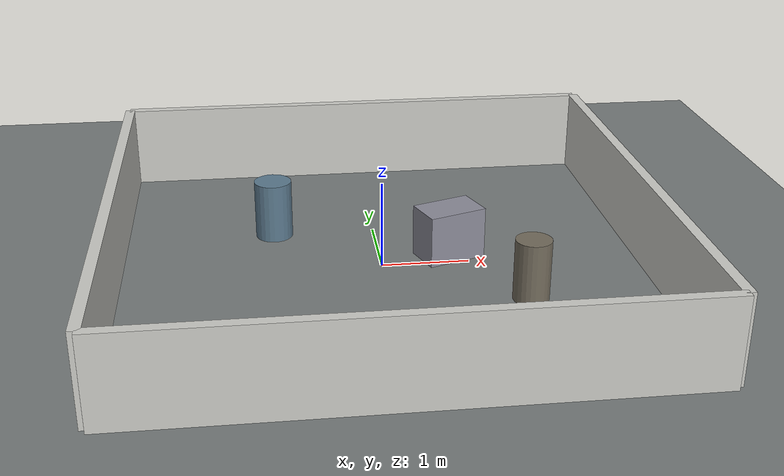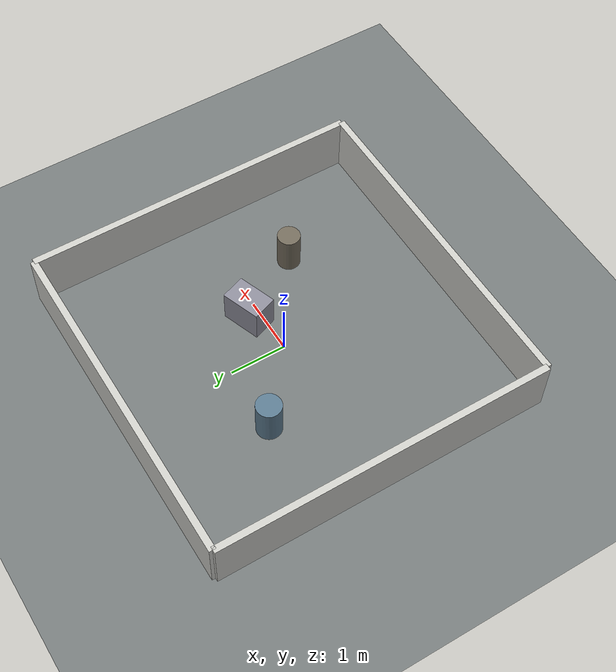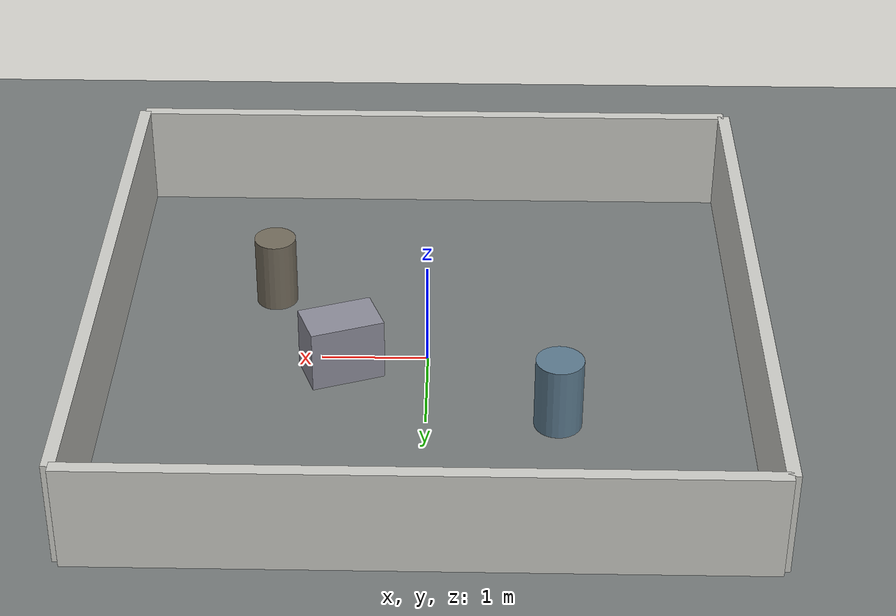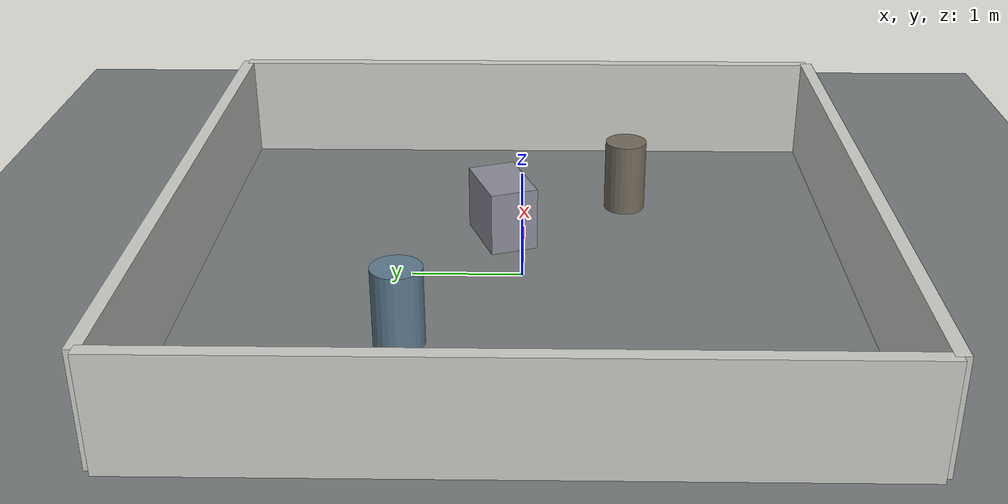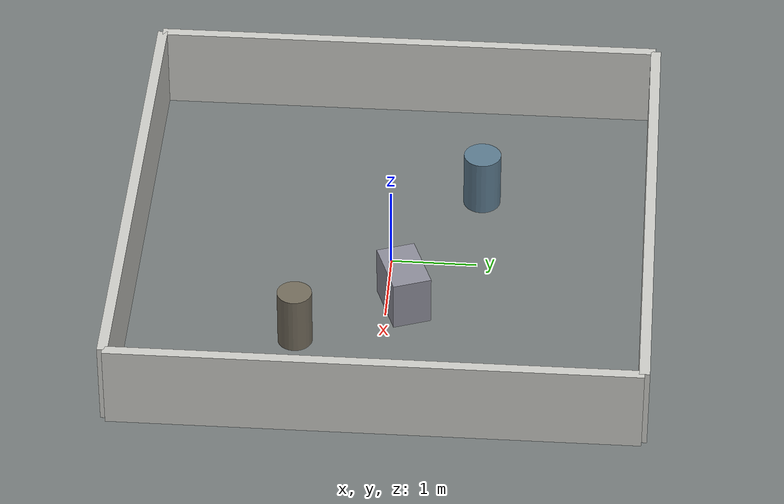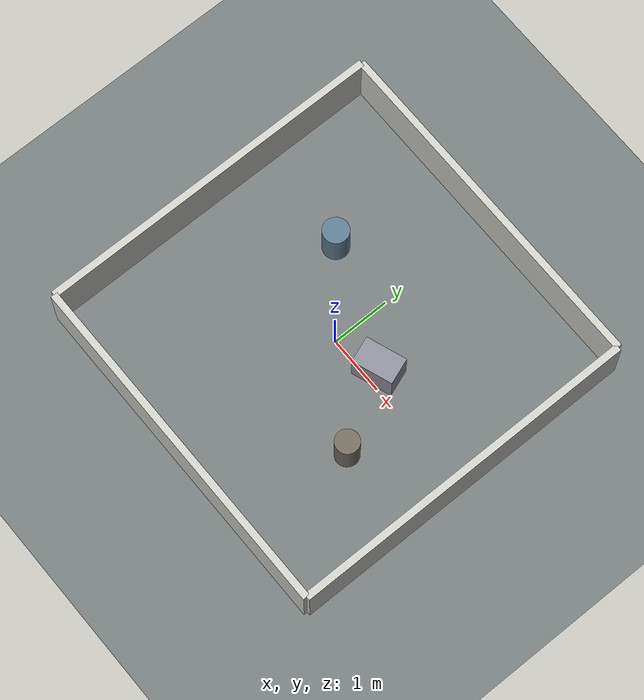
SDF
<?xml version="1.0"?>
<sdf version="1.6">
  <world name="indoor_obstacles">
    <gravity>0 0 -9.8</gravity>
    <magnetic_field>6e-06 2.3e-05 -4.2e-05</magnetic_field>
    <atmosphere type="adiabatic"/>

    <scene>
      <ambient>0.45 0.45 0.45 1</ambient>
      <background>0.78 0.82 0.86 1</background>
      <shadows>true</shadows>
    </scene>

    <light name="sun" type="directional">
      <cast_shadows>true</cast_shadows>
      <pose>0 0 8 0 0 0</pose>
      <diffuse>0.8 0.8 0.8 1</diffuse>
      <specular>0.2 0.2 0.2 1</specular>
      <attenuation>
        <range>1000</range>
        <constant>0.9</constant>
        <linear>0.01</linear>
        <quadratic>0.001</quadratic>
      </attenuation>
      <direction>-0.5 0.1 -0.9</direction>
    </light>

    <model name="ground_plane">
      <static>true</static>
      <link name="link">
        <collision name="collision">
          <geometry>
            <plane>
              <normal>0 0 1</normal>
              <size>20 20</size>
            </plane>
          </geometry>
        </collision>
        <visual name="visual">
          <geometry>
            <plane>
              <normal>0 0 1</normal>
              <size>20 20</size>
            </plane>
          </geometry>
          <material>
            <ambient>0.46 0.48 0.48 1</ambient>
            <diffuse>0.46 0.48 0.48 1</diffuse>
          </material>
        </visual>
      </link>
    </model>

    <model name="north_wall">
      <static>true</static>
      <pose>0 3 0.5 0 0 0</pose>
      <link name="link">
        <collision name="collision"><geometry><box><size>6 0.12 1</size></box></geometry></collision>
        <visual name="visual"><geometry><box><size>6 0.12 1</size></box></geometry><material><ambient>0.8 0.8 0.78 1</ambient><diffuse>0.8 0.8 0.78 1</diffuse></material></visual>
      </link>
    </model>

    <model name="south_wall">
      <static>true</static>
      <pose>0 -3 0.5 0 0 0</pose>
      <link name="link">
        <collision name="collision"><geometry><box><size>6 0.12 1</size></box></geometry></collision>
        <visual name="visual"><geometry><box><size>6 0.12 1</size></box></geometry><material><ambient>0.8 0.8 0.78 1</ambient><diffuse>0.8 0.8 0.78 1</diffuse></material></visual>
      </link>
    </model>

    <model name="east_wall">
      <static>true</static>
      <pose>3 0 0.5 0 0 0</pose>
      <link name="link">
        <collision name="collision"><geometry><box><size>0.12 6 1</size></box></geometry></collision>
        <visual name="visual"><geometry><box><size>0.12 6 1</size></box></geometry><material><ambient>0.8 0.8 0.78 1</ambient><diffuse>0.8 0.8 0.78 1</diffuse></material></visual>
      </link>
    </model>

    <model name="west_wall">
      <static>true</static>
      <pose>-3 0 0.5 0 0 0</pose>
      <link name="link">
        <collision name="collision"><geometry><box><size>0.12 6 1</size></box></geometry></collision>
        <visual name="visual"><geometry><box><size>0.12 6 1</size></box></geometry><material><ambient>0.8 0.8 0.78 1</ambient><diffuse>0.8 0.8 0.78 1</diffuse></material></visual>
      </link>
    </model>

    <model name="center_box">
      <static>true</static>
      <pose>0.8 0.2 0.3 0 0 0.35</pose>
      <link name="link">
        <collision name="collision"><geometry><box><size>0.7 0.45 0.6</size></box></geometry></collision>
        <visual name="visual"><geometry><box><size>0.7 0.45 0.6</size></box></geometry><material><ambient>0.55 0.55 0.6 1</ambient><diffuse>0.55 0.55 0.6 1</diffuse></material></visual>
      </link>
    </model>

    <model name="left_column">
      <static>true</static>
      <pose>-1.2 1.0 0.35 0 0 0</pose>
      <link name="link">
        <collision name="collision"><geometry><cylinder><radius>0.22</radius><length>0.7</length></cylinder></geometry></collision>
        <visual name="visual"><geometry><cylinder><radius>0.22</radius><length>0.7</length></cylinder></geometry><material><ambient>0.36 0.48 0.56 1</ambient><diffuse>0.36 0.48 0.56 1</diffuse></material></visual>
      </link>
    </model>

    <model name="right_column">
      <static>true</static>
      <pose>1.5 -1.0 0.35 0 0 0</pose>
      <link name="link">
        <collision name="collision"><geometry><cylinder><radius>0.2</radius><length>0.7</length></cylinder></geometry></collision>
        <visual name="visual"><geometry><cylinder><radius>0.2</radius><length>0.7</length></cylinder></geometry><material><ambient>0.45 0.42 0.36 1</ambient><diffuse>0.45 0.42 0.36 1</diffuse></material></visual>
      </link>
    </model>
  </world>
</sdf>
